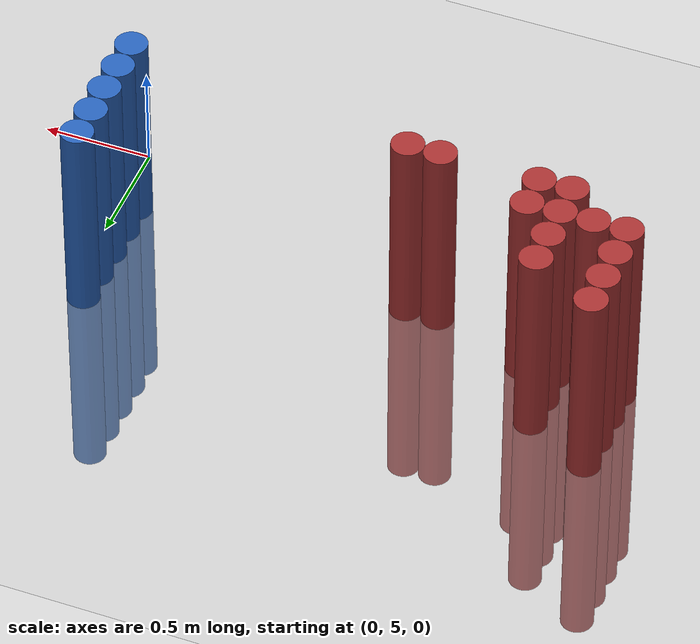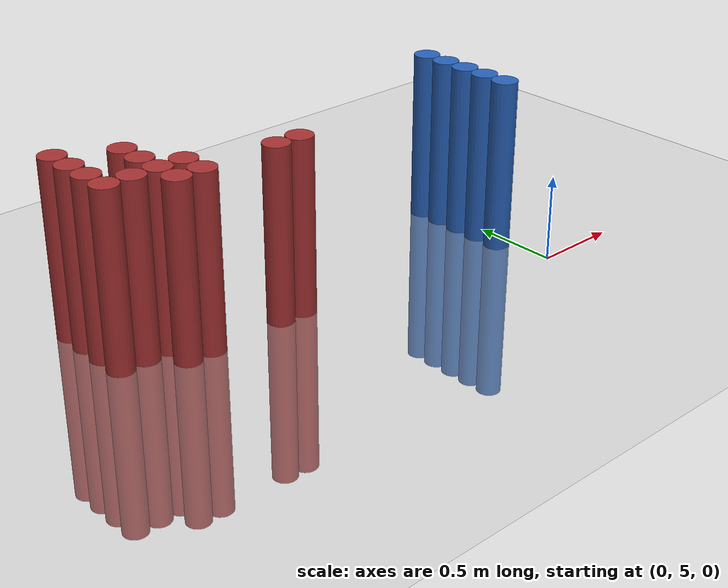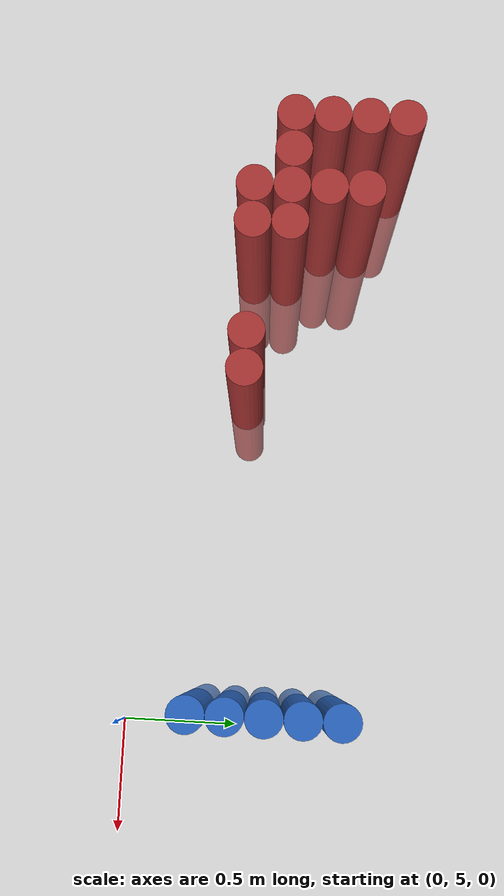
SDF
<sdf version="1.6">
 <world name="default">
  <model name="ground_plane">
   <static>1</static>
   <link name="link">
    <collision name="collision">
     <geometry><plane><normal>0 0 1</normal><size>100 100</size></plane></geometry>
     <surface><friction><ode><mu>100</mu><mu2>50</mu2></ode></friction></surface>
    </collision>
    <visual name="visual">
     <cast_shadows>0</cast_shadows>
     <geometry><plane><normal>0 0 1</normal><size>100 100</size></plane></geometry>
     <material>
      <script><uri>file://media/materials/scripts/gazebo.material</uri><name>Gazebo/Grey</name></script>
     </material>
    </visual>
   </link>
  </model>
  <model name="unit_cylinder_168">
   <static>1</static>
   <pose>-2.475000 5.625000 0.000000 0.000000 0.000000 0.000000</pose>
   <link name="link">
    <inertial>
     <mass>1</mass>
     <inertia><ixx>0.145833</ixx><ixy>0</ixy><ixz>0</ixz><iyy>0.145833</iyy><iyz>0</iyz><izz>0.125</izz></inertia>
    </inertial>
    <collision name="collision">
     <geometry><cylinder><radius>0.075000</radius><length>2</length></cylinder></geometry>
    </collision>
    <visual name="visual">
     <geometry><cylinder><radius>0.075000</radius><length>2</length></cylinder></geometry>
     <material>
      <ambient>0.648000 0.192000 0.192000 1</ambient>
      <diffuse>0.648000 0.192000 0.192000 1</diffuse>
     </material>
     <material>
      <script><name>Gazebo/Grey</name><uri>file://media/materials/scripts/gazebo.material</uri></script>
     </material>
    </visual>
   </link>
  </model>
  <model name="unit_cylinder_169">
   <static>1</static>
   <pose>-2.475000 5.775000 0.000000 0.000000 0.000000 0.000000</pose>
   <link name="link">
    <inertial>
     <mass>1</mass>
     <inertia><ixx>0.145833</ixx><ixy>0</ixy><ixz>0</ixz><iyy>0.145833</iyy><iyz>0</iyz><izz>0.125</izz></inertia>
    </inertial>
    <collision name="collision">
     <geometry><cylinder><radius>0.075000</radius><length>2</length></cylinder></geometry>
    </collision>
    <visual name="visual">
     <geometry><cylinder><radius>0.075000</radius><length>2</length></cylinder></geometry>
     <material>
      <ambient>0.648000 0.192000 0.192000 1</ambient>
      <diffuse>0.648000 0.192000 0.192000 1</diffuse>
     </material>
     <material>
      <script><name>Gazebo/Grey</name><uri>file://media/materials/scripts/gazebo.material</uri></script>
     </material>
    </visual>
   </link>
  </model>
  <model name="unit_cylinder_170">
   <static>1</static>
   <pose>-2.475000 5.925000 0.000000 0.000000 0.000000 0.000000</pose>
   <link name="link">
    <inertial>
     <mass>1</mass>
     <inertia><ixx>0.145833</ixx><ixy>0</ixy><ixz>0</ixz><iyy>0.145833</iyy><iyz>0</iyz><izz>0.125</izz></inertia>
    </inertial>
    <collision name="collision">
     <geometry><cylinder><radius>0.075000</radius><length>2</length></cylinder></geometry>
    </collision>
    <visual name="visual">
     <geometry><cylinder><radius>0.075000</radius><length>2</length></cylinder></geometry>
     <material>
      <ambient>0.648000 0.192000 0.192000 1</ambient>
      <diffuse>0.648000 0.192000 0.192000 1</diffuse>
     </material>
     <material>
      <script><name>Gazebo/Grey</name><uri>file://media/materials/scripts/gazebo.material</uri></script>
     </material>
    </visual>
   </link>
  </model>
  <model name="unit_cylinder_171">
   <static>1</static>
   <pose>-2.475000 6.075000 0.000000 0.000000 0.000000 0.000000</pose>
   <link name="link">
    <inertial>
     <mass>1</mass>
     <inertia><ixx>0.145833</ixx><ixy>0</ixy><ixz>0</ixz><iyy>0.145833</iyy><iyz>0</iyz><izz>0.125</izz></inertia>
    </inertial>
    <collision name="collision">
     <geometry><cylinder><radius>0.075000</radius><length>2</length></cylinder></geometry>
    </collision>
    <visual name="visual">
     <geometry><cylinder><radius>0.075000</radius><length>2</length></cylinder></geometry>
     <material>
      <ambient>0.648000 0.192000 0.192000 1</ambient>
      <diffuse>0.648000 0.192000 0.192000 1</diffuse>
     </material>
     <material>
      <script><name>Gazebo/Grey</name><uri>file://media/materials/scripts/gazebo.material</uri></script>
     </material>
    </visual>
   </link>
  </model>
  <model name="unit_cylinder_172">
   <static>1</static>
   <pose>-2.325000 5.625000 0.000000 0.000000 0.000000 0.000000</pose>
   <link name="link">
    <inertial>
     <mass>1</mass>
     <inertia><ixx>0.145833</ixx><ixy>0</ixy><ixz>0</ixz><iyy>0.145833</iyy><iyz>0</iyz><izz>0.125</izz></inertia>
    </inertial>
    <collision name="collision">
     <geometry><cylinder><radius>0.075000</radius><length>2</length></cylinder></geometry>
    </collision>
    <visual name="visual">
     <geometry><cylinder><radius>0.075000</radius><length>2</length></cylinder></geometry>
     <material>
      <ambient>0.648000 0.192000 0.192000 1</ambient>
      <diffuse>0.648000 0.192000 0.192000 1</diffuse>
     </material>
     <material>
      <script><name>Gazebo/Grey</name><uri>file://media/materials/scripts/gazebo.material</uri></script>
     </material>
    </visual>
   </link>
  </model>
  <model name="unit_cylinder_175">
   <static>1</static>
   <pose>-2.175000 5.475000 0.000000 0.000000 0.000000 0.000000</pose>
   <link name="link">
    <inertial>
     <mass>1</mass>
     <inertia><ixx>0.145833</ixx><ixy>0</ixy><ixz>0</ixz><iyy>0.145833</iyy><iyz>0</iyz><izz>0.125</izz></inertia>
    </inertial>
    <collision name="collision">
     <geometry><cylinder><radius>0.075000</radius><length>2</length></cylinder></geometry>
    </collision>
    <visual name="visual">
     <geometry><cylinder><radius>0.075000</radius><length>2</length></cylinder></geometry>
     <material>
      <ambient>0.648000 0.192000 0.192000 1</ambient>
      <diffuse>0.648000 0.192000 0.192000 1</diffuse>
     </material>
     <material>
      <script><name>Gazebo/Grey</name><uri>file://media/materials/scripts/gazebo.material</uri></script>
     </material>
    </visual>
   </link>
  </model>
  <model name="unit_cylinder_176">
   <static>1</static>
   <pose>-2.175000 5.625000 0.000000 0.000000 0.000000 0.000000</pose>
   <link name="link">
    <inertial>
     <mass>1</mass>
     <inertia><ixx>0.145833</ixx><ixy>0</ixy><ixz>0</ixz><iyy>0.145833</iyy><iyz>0</iyz><izz>0.125</izz></inertia>
    </inertial>
    <collision name="collision">
     <geometry><cylinder><radius>0.075000</radius><length>2</length></cylinder></geometry>
    </collision>
    <visual name="visual">
     <geometry><cylinder><radius>0.075000</radius><length>2</length></cylinder></geometry>
     <material>
      <ambient>0.648000 0.192000 0.192000 1</ambient>
      <diffuse>0.648000 0.192000 0.192000 1</diffuse>
     </material>
     <material>
      <script><name>Gazebo/Grey</name><uri>file://media/materials/scripts/gazebo.material</uri></script>
     </material>
    </visual>
   </link>
  </model>
  <model name="unit_cylinder_177">
   <static>1</static>
   <pose>-2.175000 5.775000 0.000000 0.000000 0.000000 0.000000</pose>
   <link name="link">
    <inertial>
     <mass>1</mass>
     <inertia><ixx>0.145833</ixx><ixy>0</ixy><ixz>0</ixz><iyy>0.145833</iyy><iyz>0</iyz><izz>0.125</izz></inertia>
    </inertial>
    <collision name="collision">
     <geometry><cylinder><radius>0.075000</radius><length>2</length></cylinder></geometry>
    </collision>
    <visual name="visual">
     <geometry><cylinder><radius>0.075000</radius><length>2</length></cylinder></geometry>
     <material>
      <ambient>0.648000 0.192000 0.192000 1</ambient>
      <diffuse>0.648000 0.192000 0.192000 1</diffuse>
     </material>
     <material>
      <script><name>Gazebo/Grey</name><uri>file://media/materials/scripts/gazebo.material</uri></script>
     </material>
    </visual>
   </link>
  </model>
  <model name="unit_cylinder_178">
   <static>1</static>
   <pose>-2.175000 5.925000 0.000000 0.000000 0.000000 0.000000</pose>
   <link name="link">
    <inertial>
     <mass>1</mass>
     <inertia><ixx>0.145833</ixx><ixy>0</ixy><ixz>0</ixz><iyy>0.145833</iyy><iyz>0</iyz><izz>0.125</izz></inertia>
    </inertial>
    <collision name="collision">
     <geometry><cylinder><radius>0.075000</radius><length>2</length></cylinder></geometry>
    </collision>
    <visual name="visual">
     <geometry><cylinder><radius>0.075000</radius><length>2</length></cylinder></geometry>
     <material>
      <ambient>0.648000 0.192000 0.192000 1</ambient>
      <diffuse>0.648000 0.192000 0.192000 1</diffuse>
     </material>
     <material>
      <script><name>Gazebo/Grey</name><uri>file://media/materials/scripts/gazebo.material</uri></script>
     </material>
    </visual>
   </link>
  </model>
  <model name="unit_cylinder_183">
   <static>1</static>
   <pose>-2.025000 5.475000 0.000000 0.000000 0.000000 0.000000</pose>
   <link name="link">
    <inertial>
     <mass>1</mass>
     <inertia><ixx>0.145833</ixx><ixy>0</ixy><ixz>0</ixz><iyy>0.145833</iyy><iyz>0</iyz><izz>0.125</izz></inertia>
    </inertial>
    <collision name="collision">
     <geometry><cylinder><radius>0.075000</radius><length>2</length></cylinder></geometry>
    </collision>
    <visual name="visual">
     <geometry><cylinder><radius>0.075000</radius><length>2</length></cylinder></geometry>
     <material>
      <ambient>0.648000 0.192000 0.192000 1</ambient>
      <diffuse>0.648000 0.192000 0.192000 1</diffuse>
     </material>
     <material>
      <script><name>Gazebo/Grey</name><uri>file://media/materials/scripts/gazebo.material</uri></script>
     </material>
    </visual>
   </link>
  </model>
  <model name="unit_cylinder_184">
   <static>1</static>
   <pose>-2.025000 5.625000 0.000000 0.000000 0.000000 0.000000</pose>
   <link name="link">
    <inertial>
     <mass>1</mass>
     <inertia><ixx>0.145833</ixx><ixy>0</ixy><ixz>0</ixz><iyy>0.145833</iyy><iyz>0</iyz><izz>0.125</izz></inertia>
    </inertial>
    <collision name="collision">
     <geometry><cylinder><radius>0.075000</radius><length>2</length></cylinder></geometry>
    </collision>
    <visual name="visual">
     <geometry><cylinder><radius>0.075000</radius><length>2</length></cylinder></geometry>
     <material>
      <ambient>0.648000 0.192000 0.192000 1</ambient>
      <diffuse>0.648000 0.192000 0.192000 1</diffuse>
     </material>
     <material>
      <script><name>Gazebo/Grey</name><uri>file://media/materials/scripts/gazebo.material</uri></script>
     </material>
    </visual>
   </link>
  </model>
  <model name="unit_cylinder_205">
   <static>1</static>
   <pose>-1.575000 5.475000 0.000000 0.000000 0.000000 0.000000</pose>
   <link name="link">
    <inertial>
     <mass>1</mass>
     <inertia><ixx>0.145833</ixx><ixy>0</ixy><ixz>0</ixz><iyy>0.145833</iyy><iyz>0</iyz><izz>0.125</izz></inertia>
    </inertial>
    <collision name="collision">
     <geometry><cylinder><radius>0.075000</radius><length>2</length></cylinder></geometry>
    </collision>
    <visual name="visual">
     <geometry><cylinder><radius>0.075000</radius><length>2</length></cylinder></geometry>
     <material>
      <ambient>0.648000 0.192000 0.192000 1</ambient>
      <diffuse>0.648000 0.192000 0.192000 1</diffuse>
     </material>
     <material>
      <script><name>Gazebo/Grey</name><uri>file://media/materials/scripts/gazebo.material</uri></script>
     </material>
    </visual>
   </link>
  </model>
  <model name="unit_cylinder_211">
   <static>1</static>
   <pose>-1.425000 5.475000 0.000000 0.000000 0.000000 0.000000</pose>
   <link name="link">
    <inertial>
     <mass>1</mass>
     <inertia><ixx>0.145833</ixx><ixy>0</ixy><ixz>0</ixz><iyy>0.145833</iyy><iyz>0</iyz><izz>0.125</izz></inertia>
    </inertial>
    <collision name="collision">
     <geometry><cylinder><radius>0.075000</radius><length>2</length></cylinder></geometry>
    </collision>
    <visual name="visual">
     <geometry><cylinder><radius>0.075000</radius><length>2</length></cylinder></geometry>
     <material>
      <ambient>0.648000 0.192000 0.192000 1</ambient>
      <diffuse>0.648000 0.192000 0.192000 1</diffuse>
     </material>
     <material>
      <script><name>Gazebo/Grey</name><uri>file://media/materials/scripts/gazebo.material</uri></script>
     </material>
    </visual>
   </link>
  </model>
  <model name="unit_cylinder_247">
   <static>1</static>
   <pose>-0.075000 5.325000 0.000000 0.000000 0.000000 0.000000</pose>
   <link name="link">
    <inertial>
     <mass>1</mass>
     <inertia><ixx>0.145833</ixx><ixy>0</ixy><ixz>0</ixz><iyy>0.145833</iyy><iyz>0</iyz><izz>0.125</izz></inertia>
    </inertial>
    <collision name="collision">
     <geometry><cylinder><radius>0.075000</radius><length>2</length></cylinder></geometry>
    </collision>
    <visual name="visual">
     <geometry><cylinder><radius>0.075000</radius><length>2</length></cylinder></geometry>
     <material>
      <ambient>0.152000 0.379000 0.720000 1</ambient>
      <diffuse>0.152000 0.379000 0.720000 1</diffuse>
     </material>
     <material>
      <script><name>Gazebo/Grey</name><uri>file://media/materials/scripts/gazebo.material</uri></script>
     </material>
    </visual>
   </link>
  </model>
  <model name="unit_cylinder_248">
   <static>1</static>
   <pose>-0.075000 5.475000 0.000000 0.000000 0.000000 0.000000</pose>
   <link name="link">
    <inertial>
     <mass>1</mass>
     <inertia><ixx>0.145833</ixx><ixy>0</ixy><ixz>0</ixz><iyy>0.145833</iyy><iyz>0</iyz><izz>0.125</izz></inertia>
    </inertial>
    <collision name="collision">
     <geometry><cylinder><radius>0.075000</radius><length>2</length></cylinder></geometry>
    </collision>
    <visual name="visual">
     <geometry><cylinder><radius>0.075000</radius><length>2</length></cylinder></geometry>
     <material>
      <ambient>0.152000 0.379000 0.720000 1</ambient>
      <diffuse>0.152000 0.379000 0.720000 1</diffuse>
     </material>
     <material>
      <script><name>Gazebo/Grey</name><uri>file://media/materials/scripts/gazebo.material</uri></script>
     </material>
    </visual>
   </link>
  </model>
  <model name="unit_cylinder_249">
   <static>1</static>
   <pose>-0.075000 5.625000 0.000000 0.000000 0.000000 0.000000</pose>
   <link name="link">
    <inertial>
     <mass>1</mass>
     <inertia><ixx>0.145833</ixx><ixy>0</ixy><ixz>0</ixz><iyy>0.145833</iyy><iyz>0</iyz><izz>0.125</izz></inertia>
    </inertial>
    <collision name="collision">
     <geometry><cylinder><radius>0.075000</radius><length>2</length></cylinder></geometry>
    </collision>
    <visual name="visual">
     <geometry><cylinder><radius>0.075000</radius><length>2</length></cylinder></geometry>
     <material>
      <ambient>0.152000 0.379000 0.720000 1</ambient>
      <diffuse>0.152000 0.379000 0.720000 1</diffuse>
     </material>
     <material>
      <script><name>Gazebo/Grey</name><uri>file://media/materials/scripts/gazebo.material</uri></script>
     </material>
    </visual>
   </link>
  </model>
  <model name="unit_cylinder_250">
   <static>1</static>
   <pose>-0.075000 5.775000 0.000000 0.000000 0.000000 0.000000</pose>
   <link name="link">
    <inertial>
     <mass>1</mass>
     <inertia><ixx>0.145833</ixx><ixy>0</ixy><ixz>0</ixz><iyy>0.145833</iyy><iyz>0</iyz><izz>0.125</izz></inertia>
    </inertial>
    <collision name="collision">
     <geometry><cylinder><radius>0.075000</radius><length>2</length></cylinder></geometry>
    </collision>
    <visual name="visual">
     <geometry><cylinder><radius>0.075000</radius><length>2</length></cylinder></geometry>
     <material>
      <ambient>0.152000 0.379000 0.720000 1</ambient>
      <diffuse>0.152000 0.379000 0.720000 1</diffuse>
     </material>
     <material>
      <script><name>Gazebo/Grey</name><uri>file://media/materials/scripts/gazebo.material</uri></script>
     </material>
    </visual>
   </link>
  </model>
  <model name="unit_cylinder_251">
   <static>1</static>
   <pose>-0.075000 5.925000 0.000000 0.000000 0.000000 0.000000</pose>
   <link name="link">
    <inertial>
     <mass>1</mass>
     <inertia><ixx>0.145833</ixx><ixy>0</ixy><ixz>0</ixz><iyy>0.145833</iyy><iyz>0</iyz><izz>0.125</izz></inertia>
    </inertial>
    <collision name="collision">
     <geometry><cylinder><radius>0.075000</radius><length>2</length></cylinder></geometry>
    </collision>
    <visual name="visual">
     <geometry><cylinder><radius>0.075000</radius><length>2</length></cylinder></geometry>
     <material>
      <ambient>0.152000 0.379000 0.720000 1</ambient>
      <diffuse>0.152000 0.379000 0.720000 1</diffuse>
     </material>
     <material>
      <script><name>Gazebo/Grey</name><uri>file://media/materials/scripts/gazebo.material</uri></script>
     </material>
    </visual>
   </link>
  </model>
 </world>
</sdf>
